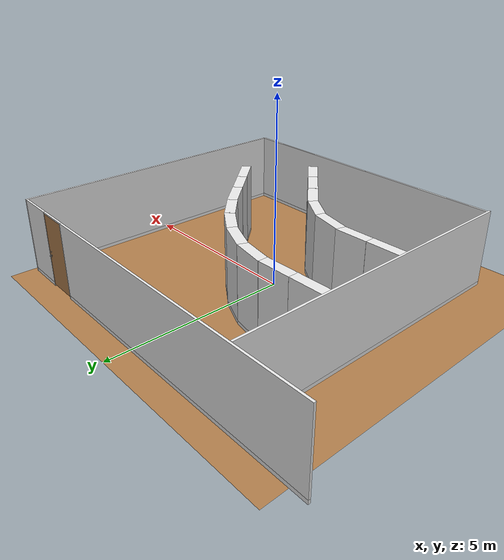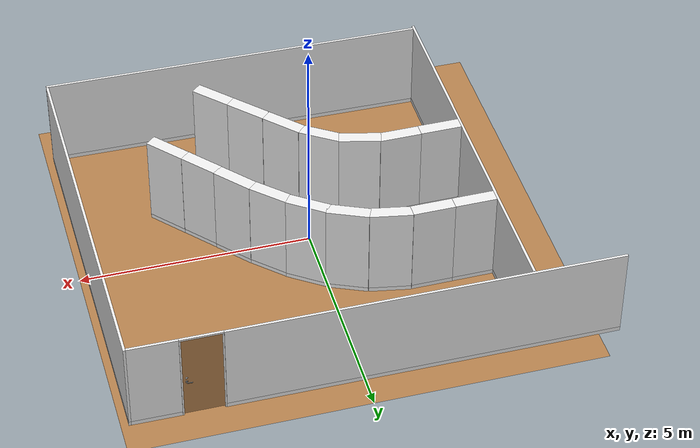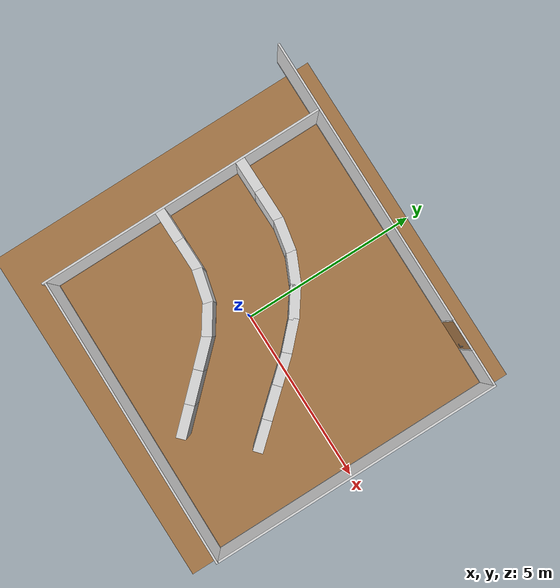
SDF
<sdf version="1.6">
 <world name="default">
  <light name="sun" type="directional">
   <pose>0 0 10 0 -0 0</pose>
   <diffuse>0.8 0.8 0.8 1</diffuse>
   <specular>0.2 0.2 0.2 1</specular>
   <attenuation>
    <range>1000</range>
    <constant>0.9</constant>
    <linear>0.01</linear>
    <quadratic>0.001</quadratic>
   </attenuation>
   <direction>-0.5 0.1 -0.9</direction>
  </light>
  <physics name="default_physics" default="0" type="ode">
   <max_step_size>0.001</max_step_size>
   <real_time_factor>1</real_time_factor>
   <real_time_update_rate>1000</real_time_update_rate>
  </physics>
  <scene><ambient>0.4 0.4 0.4 1</ambient><background>0.7 0.7 0.7 1</background><shadows>0</shadows></scene>
  <model name="wrc_ground_plane">
   <static>1</static>
   <link name="link">
    <collision name="collision">
     <geometry><plane><normal>0 0 1</normal><size>10 10</size></plane></geometry>
     <surface>
      <contact><collide_bitmask>65535</collide_bitmask></contact>
      <friction><ode><mu>100</mu><mu2>50</mu2></ode></friction>
     </surface>
    </collision>
    <visual name="visual">
     <cast_shadows>0</cast_shadows>
     <geometry><plane><normal>0 0 1</normal><size>10 10</size></plane></geometry>
     <material>
      <script><uri>model://wrc_ground_plane/materials/wood.material</uri><name>WRS/WoodFloor</name></script>
     </material>
    </visual>
   </link>
  </model>
  <magnetic_field>6e-06 2.3e-05 -4.2e-05</magnetic_field>
  <atmosphere type="adiabatic"/>
  <spherical_coordinates>
   <surface_model>EARTH_WGS84</surface_model>
   <latitude_deg>0</latitude_deg>
   <longitude_deg>0</longitude_deg>
   <elevation>0</elevation>
   <heading_deg>0</heading_deg>
  </spherical_coordinates>
  <model name="full_wall_55_8295_2090">
   <link name="link">
    <inertial>
     <mass>50</mass>
     <inertia><ixx>1</ixx><ixy>0</ixy><ixz>0</ixz><iyy>1</iyy><iyz>0</iyz><izz>1</izz></inertia>
    </inertial>
    <visual name="bottom_frame">
     <pose>0 0 0.05 0 -0 0</pose>
     <geometry><box><size>0.055 8.295 0.1</size></box></geometry>
     <material>
      <script><uri>model://base_materials/color/scripts</uri><name>hsr_color/white</name></script>
     </material>
    </visual>
    <collision name="collision_bottom_frame">
     <pose>0 0 0.05 0 -0 0</pose>
     <geometry><box><size>0.055 8.295 0.1</size></box></geometry>
    </collision>
    <visual name="wall">
     <pose>0 0 1.095 0 -0 0</pose>
     <geometry><box><size>0.055 8.295 1.99</size></box></geometry>
     <material>
      <script>
       <uri>model://base_materials/wall/scripts</uri>
       <uri>model://base_materials/wall/textures</uri>
       <name>wall/white_noise</name>
      </script>
     </material>
    </visual>
    <collision name="collision_wall">
     <pose>0 0 1.095 0 -0 0</pose>
     <geometry><box><size>0.055 8.295 1.99</size></box></geometry>
    </collision>
    <velocity_decay><linear>0</linear><angular>0</angular></velocity_decay>
   </link>
   <static>1</static>
   <pose>4.81252 0.172211 0 0 -0 0</pose>
  </model>
  <model name="full_wall_55_8295_2090_clone">
   <link name="link">
    <inertial>
     <mass>50</mass>
     <inertia><ixx>1</ixx><ixy>0</ixy><ixz>0</ixz><iyy>1</iyy><iyz>0</iyz><izz>1</izz></inertia>
    </inertial>
    <visual name="bottom_frame">
     <pose>0 0 0.05 0 -0 0</pose>
     <geometry><box><size>0.055 8.295 0.1</size></box></geometry>
     <material>
      <script><uri>model://base_materials/color/scripts</uri><name>hsr_color/white</name></script>
     </material>
    </visual>
    <collision name="collision_bottom_frame">
     <pose>0 0 0.05 0 -0 0</pose>
     <geometry><box><size>0.055 8.295 0.1</size></box></geometry>
    </collision>
    <visual name="wall">
     <pose>0 0 1.095 0 -0 0</pose>
     <geometry><box><size>0.055 8.295 1.99</size></box></geometry>
     <material>
      <script>
       <uri>model://base_materials/wall/scripts</uri>
       <uri>model://base_materials/wall/textures</uri>
       <name>wall/white_noise</name>
      </script>
     </material>
    </visual>
    <collision name="collision_wall">
     <pose>0 0 1.095 0 -0 0</pose>
     <geometry><box><size>0.055 8.295 1.99</size></box></geometry>
    </collision>
    <velocity_decay><linear>0</linear><angular>0</angular></velocity_decay>
   </link>
   <static>1</static>
   <pose>-1.30065 4.31927 0 0 0 -1.57365</pose>
  </model>
  <model name="full_wall_55_900_2090">
   <link name="link">
    <inertial>
     <mass>50</mass>
     <inertia><ixx>1</ixx><ixy>0</ixy><ixz>0</ixz><iyy>1</iyy><iyz>0</iyz><izz>1</izz></inertia>
    </inertial>
    <visual name="bottom_frame">
     <pose>0 0 0.05 0 -0 0</pose>
     <geometry><box><size>0.055 1.04 0.1</size></box></geometry>
     <material>
      <script><uri>model://base_materials/color/scripts</uri><name>hsr_color/white</name></script>
     </material>
    </visual>
    <collision name="collision_bottom_frame">
     <pose>0 0 0.05 0 -0 0</pose>
     <geometry><box><size>0.055 1.04 0.1</size></box></geometry>
    </collision>
    <visual name="wall">
     <pose>0 0 1.095 0 -0 0</pose>
     <geometry><box><size>0.055 1.04 1.99</size></box></geometry>
     <material>
      <script>
       <uri>model://base_materials/wall/scripts</uri>
       <uri>model://base_materials/wall/textures</uri>
       <name>wall/white_noise</name>
      </script>
     </material>
    </visual>
    <collision name="collision_wall">
     <pose>0 0 1.095 0 -0 0</pose>
     <geometry><box><size>0.055 1.04 1.99</size></box></geometry>
    </collision>
    <velocity_decay><linear>0</linear><angular>0</angular></velocity_decay>
   </link>
   <static>1</static>
   <pose>4.26859 4.29665 0 0 -0 1.56253</pose>
  </model>
  <model name="full_wall_55_8295_2090_0">
   <link name="link">
    <inertial>
     <mass>50</mass>
     <inertia><ixx>1</ixx><ixy>0</ixy><ixz>0</ixz><iyy>1</iyy><iyz>0</iyz><izz>1</izz></inertia>
    </inertial>
    <visual name="bottom_frame">
     <pose>0 0 0.05 0 -0 0</pose>
     <geometry><box><size>0.055 8.295 0.1</size></box></geometry>
     <material>
      <script><uri>model://base_materials/color/scripts</uri><name>hsr_color/white</name></script>
     </material>
    </visual>
    <collision name="collision_bottom_frame">
     <pose>0 0 0.05 0 -0 0</pose>
     <geometry><box><size>0.055 8.295 0.1</size></box></geometry>
    </collision>
    <visual name="wall">
     <pose>0 0 1.095 0 -0 0</pose>
     <geometry><box><size>0.055 8.295 1.99</size></box></geometry>
     <material>
      <script>
       <uri>model://base_materials/wall/scripts</uri>
       <uri>model://base_materials/wall/textures</uri>
       <name>wall/white_noise</name>
      </script>
     </material>
    </visual>
    <collision name="collision_wall">
     <pose>0 0 1.095 0 -0 0</pose>
     <geometry><box><size>0.055 8.295 1.99</size></box></geometry>
    </collision>
    <velocity_decay><linear>0</linear><angular>0</angular></velocity_decay>
   </link>
   <static>1</static>
   <pose>0.687285 -3.96616 0 0 0 -1.58277</pose>
  </model>
  <model name="full_wall_55_8295_2090_1">
   <link name="link">
    <inertial>
     <mass>50</mass>
     <inertia><ixx>1</ixx><ixy>0</ixy><ixz>0</ixz><iyy>1</iyy><iyz>0</iyz><izz>1</izz></inertia>
    </inertial>
    <visual name="bottom_frame">
     <pose>0 0 0.05 0 -0 0</pose>
     <geometry><box><size>0.055 8.295 0.1</size></box></geometry>
     <material>
      <script><uri>model://base_materials/color/scripts</uri><name>hsr_color/white</name></script>
     </material>
    </visual>
    <collision name="collision_bottom_frame">
     <pose>0 0 0.05 0 -0 0</pose>
     <geometry><box><size>0.055 8.295 0.1</size></box></geometry>
    </collision>
    <visual name="wall">
     <pose>0 0 1.095 0 -0 0</pose>
     <geometry><box><size>0.055 8.295 1.99</size></box></geometry>
     <material>
      <script>
       <uri>model://base_materials/wall/scripts</uri>
       <uri>model://base_materials/wall/textures</uri>
       <name>wall/white_noise</name>
      </script>
     </material>
    </visual>
    <collision name="collision_wall">
     <pose>0 0 1.095 0 -0 0</pose>
     <geometry><box><size>0.055 8.295 1.99</size></box></geometry>
    </collision>
    <velocity_decay><linear>0</linear><angular>0</angular></velocity_decay>
   </link>
   <static>1</static>
   <pose>-3.4877 0.144746 0 0 -0 0</pose>
  </model>
  <model name="door_55_900_2090">
   <link name="link">
    <pose>0 0.45 0 0 -0 0</pose>
    <inertial>
     <mass>50</mass>
     <inertia><ixx>1</ixx><ixy>0</ixy><ixz>0</ixz><iyy>1</iyy><iyz>0</iyz><izz>1</izz></inertia>
    </inertial>
    <visual name="door">
     <pose>0 0 1.05 0 -0 0</pose>
     <geometry><box><size>0.055 0.83 2</size></box></geometry>
     <material>
      <script><uri>model://base_materials/wood/scripts/wood.material</uri><name>base_materials/wood</name></script>
     </material>
    </visual>
    <collision name="collision_door">
     <pose>0 0 1.05 0 -0 0</pose>
     <geometry><box><size>0.055 0.83 2</size></box></geometry>
    </collision>
    <visual name="right_frame">
     <pose>0 0.4325 1.025 0 -0 0</pose>
     <geometry><box><size>0.055 0.035 2.05</size></box></geometry>
     <material>
      <script><uri>model://base_materials/color/scripts</uri><name>hsr_color/white</name></script>
     </material>
    </visual>
    <collision name="collision_right_frame">
     <pose>0 0.4325 1.025 0 -0 0</pose>
     <geometry><box><size>0.055 0.035 2.05</size></box></geometry>
    </collision>
    <visual name="left_frame">
     <pose>0 -0.4325 1.025 0 -0 0</pose>
     <geometry><box><size>0.055 0.035 2.05</size></box></geometry>
     <material>
      <script><uri>model://base_materials/color/scripts</uri><name>hsr_color/white</name></script>
     </material>
    </visual>
    <collision name="collision_left_frame">
     <pose>0 -0.4325 1.025 0 -0 0</pose>
     <geometry><box><size>0.055 0.035 2.05</size></box></geometry>
    </collision>
    <visual name="top_frame">
     <pose>0 0 2.07 0 -0 0</pose>
     <geometry><box><size>0.055 0.9 0.04</size></box></geometry>
     <material>
      <script><uri>model://base_materials/color/scripts</uri><name>hsr_color/white</name></script>
     </material>
    </visual>
    <collision name="collision_top_frame">
     <pose>0 0 2.07 0 -0 0</pose>
     <geometry><box><size>0.055 0.9 0.04</size></box></geometry>
    </collision>
    <visual name="handle_front">
     <pose>0.0775 0.285 0.93 1.5708 -0 0</pose>
     <geometry><cylinder><radius>0.01</radius><length>0.1</length></cylinder></geometry>
     <material>
      <script><uri>model://base_materials/color/scripts</uri><name>hsr_color/grey</name></script>
     </material>
    </visual>
    <collision name="collision_handle_front">
     <pose>0.0775 0.285 0.93 1.5708 -0 0</pose>
     <geometry><cylinder><radius>0.01</radius><length>0.1</length></cylinder></geometry>
    </collision>
    <visual name="handle_back">
     <pose>-0.0775 0.285 0.93 1.5708 -0 0</pose>
     <geometry><cylinder><radius>0.01</radius><length>0.1</length></cylinder></geometry>
     <material>
      <script><uri>model://base_materials/color/scripts</uri><name>hsr_color/grey</name></script>
     </material>
    </visual>
    <collision name="collision_handle_back">
     <pose>-0.0775 0.285 0.93 1.5708 -0 0</pose>
     <geometry><cylinder><radius>0.01</radius><length>0.1</length></cylinder></geometry>
    </collision>
    <visual name="handle_center1">
     <pose>0 0.335 0.93 3.14159 1.57079 3.14159</pose>
     <geometry><cylinder><radius>0.01</radius><length>0.155</length></cylinder></geometry>
     <material>
      <script><uri>model://base_materials/color/scripts</uri><name>hsr_color/grey</name></script>
     </material>
    </visual>
    <collision name="collision_center1">
     <pose>0 0.335 0.93 3.14159 1.57079 3.14159</pose>
     <geometry><cylinder><radius>0.01</radius><length>0.155</length></cylinder></geometry>
    </collision>
    <visual name="handle_center2">
     <pose>0 0.335 0.93 3.14159 1.57079 3.14159</pose>
     <geometry><cylinder><radius>0.025</radius><length>0.075</length></cylinder></geometry>
     <material>
      <script><uri>model://base_materials/color/scripts</uri><name>hsr_color/grey</name></script>
     </material>
    </visual>
    <collision name="collision_center1">
     <pose>0 0.335 0.93 3.14159 1.57079 3.14159</pose>
     <geometry><cylinder><radius>0.025</radius><length>0.075</length></cylinder></geometry>
    </collision>
    <visual name="handle_front_right_corner">
     <pose>0.0775 0.335 0.93 0 -0 0</pose>
     <geometry><sphere><radius>0.01</radius></sphere></geometry>
     <material>
      <script><uri>model://base_materials/color/scripts</uri><name>hsr_color/grey</name></script>
     </material>
    </visual>
    <collision name="collision_handle_front_right_corner">
     <pose>0.0775 0.335 0.93 0 -0 0</pose>
     <geometry><sphere><radius>0.01</radius></sphere></geometry>
    </collision>
    <visual name="handle_front_left_corner">
     <pose>0.0775 0.235 0.93 0 -0 0</pose>
     <geometry><sphere><radius>0.01</radius></sphere></geometry>
     <material>
      <script><uri>model://base_materials/color/scripts</uri><name>hsr_color/grey</name></script>
     </material>
    </visual>
    <collision name="collision_handle_front_left_corner">
     <pose>0.0775 0.235 0.93 0 -0 0</pose>
     <geometry><sphere><radius>0.01</radius></sphere></geometry>
    </collision>
    <visual name="handle_back_right_corner">
     <pose>-0.0775 0.335 0.93 0 -0 0</pose>
     <geometry><sphere><radius>0.01</radius></sphere></geometry>
     <material>
      <script><uri>model://base_materials/color/scripts</uri><name>hsr_color/grey</name></script>
     </material>
    </visual>
    <collision name="collision_handle_back_right_corner">
     <pose>-0.0775 0.335 0.93 0 -0 0</pose>
     <geometry><sphere><radius>0.01</radius></sphere></geometry>
    </collision>
    <visual name="handle_back_left_corner">
     <pose>-0.0775 0.235 0.93 0 -0 0</pose>
     <geometry><sphere><radius>0.01</radius></sphere></geometry>
     <material>
      <script><uri>model://base_materials/color/scripts</uri><name>hsr_color/white</name></script>
     </material>
    </visual>
    <collision name="collision_handle_back_left_corner">
     <pose>-0.0775 0.235 0.93 0 -0 0</pose>
     <geometry><sphere><radius>0.01</radius></sphere></geometry>
    </collision>
    <visual name="handle_lock1">
     <pose>0 0.335 1.03 0 -0 0</pose>
     <geometry><box><size>0.075 0.005 0.04</size></box></geometry>
     <material>
      <script><uri>model://base_materials/color/scripts</uri><name>hsr_color/white</name></script>
     </material>
    </visual>
    <collision name="collision_handle_lock1">
     <pose>0 0.335 1.03 0 -0 0</pose>
     <geometry><box><size>0.075 0.005 0.04</size></box></geometry>
    </collision>
    <visual name="handle_lock2">
     <pose>0 0.335 1.03 3.14159 1.57079 3.14159</pose>
     <geometry><cylinder><radius>0.025</radius><length>0.065</length></cylinder></geometry>
     <material>
      <script><uri>model://base_materials/color/scripts</uri><name>hsr_color/white</name></script>
     </material>
    </visual>
    <collision name="collision_handle_lock1">
     <pose>0 0.335 1.03 3.14159 1.57079 3.14159</pose>
     <geometry><cylinder><radius>0.025</radius><length>0.065</length></cylinder></geometry>
    </collision>
    <velocity_decay><linear>0</linear><angular>0</angular></velocity_decay>
   </link>
   <static>1</static>
   <pose>2.84759 4.30281 0 0 0 -1.57383</pose>
  </model>
  <model name="full_wall_270_900_2090">
   <link name="link">
    <inertial>
     <mass>50</mass>
     <inertia><ixx>1</ixx><ixy>0</ixy><ixz>0</ixz><iyy>1</iyy><iyz>0</iyz><izz>1</izz></inertia>
    </inertial>
    <visual name="bottom_frame">
     <pose>0 0 0.05 0 -0 0</pose>
     <geometry><box><size>0.27 0.9 0.1</size></box></geometry>
     <material>
      <script><uri>model://base_materials/color/scripts</uri><name>hsr_color/white</name></script>
     </material>
    </visual>
    <collision name="collision_bottom_frame">
     <pose>0 0 0.05 0 -0 0</pose>
     <geometry><box><size>0.27 0.9 0.1</size></box></geometry>
    </collision>
    <visual name="wall">
     <pose>0 0 1.095 0 -0 0</pose>
     <geometry><box><size>0.27 0.9 1.99</size></box></geometry>
     <material>
      <script>
       <uri>model://base_materials/wall/scripts</uri>
       <uri>model://base_materials/wall/textures</uri>
       <name>wall/white_noise</name>
      </script>
     </material>
    </visual>
    <collision name="collision_wall">
     <pose>0 0 1.095 0 -0 0</pose>
     <geometry><box><size>0.27 0.9 1.99</size></box></geometry>
    </collision>
    <velocity_decay><linear>0</linear><angular>0</angular></velocity_decay>
   </link>
   <static>1</static>
   <pose>-2.11542 1.92327 0 0 0 -1.5644</pose>
  </model>
  <model name="full_wall_270_900_2090_clone">
   <link name="link">
    <inertial>
     <mass>50</mass>
     <inertia><ixx>1</ixx><ixy>0</ixy><ixz>0</ixz><iyy>1</iyy><iyz>0</iyz><izz>1</izz></inertia>
    </inertial>
    <visual name="bottom_frame">
     <pose>0 0 0.05 0 -0 0</pose>
     <geometry><box><size>0.27 0.9 0.1</size></box></geometry>
     <material>
      <script><uri>model://base_materials/color/scripts</uri><name>hsr_color/white</name></script>
     </material>
    </visual>
    <collision name="collision_bottom_frame">
     <pose>0 0 0.05 0 -0 0</pose>
     <geometry><box><size>0.27 0.9 0.1</size></box></geometry>
    </collision>
    <visual name="wall">
     <pose>0 0 1.095 0 -0 0</pose>
     <geometry><box><size>0.27 0.9 1.99</size></box></geometry>
     <material>
      <script>
       <uri>model://base_materials/wall/scripts</uri>
       <uri>model://base_materials/wall/textures</uri>
       <name>wall/white_noise</name>
      </script>
     </material>
    </visual>
    <collision name="collision_wall">
     <pose>0 0 1.095 0 -0 0</pose>
     <geometry><box><size>0.27 0.9 1.99</size></box></geometry>
    </collision>
    <velocity_decay><linear>0</linear><angular>0</angular></velocity_decay>
   </link>
   <static>1</static>
   <pose>-2.11673 -0.478875 0 0 0 -1.5644</pose>
  </model>
  <model name="full_wall_270_900_2090_clone_0">
   <link name="link">
    <inertial>
     <mass>50</mass>
     <inertia><ixx>1</ixx><ixy>0</ixy><ixz>0</ixz><iyy>1</iyy><iyz>0</iyz><izz>1</izz></inertia>
    </inertial>
    <visual name="bottom_frame">
     <pose>0 0 0.05 0 -0 0</pose>
     <geometry><box><size>0.27 0.9 0.1</size></box></geometry>
     <material>
      <script><uri>model://base_materials/color/scripts</uri><name>hsr_color/white</name></script>
     </material>
    </visual>
    <collision name="collision_bottom_frame">
     <pose>0 0 0.05 0 -0 0</pose>
     <geometry><box><size>0.27 0.9 0.1</size></box></geometry>
    </collision>
    <visual name="wall">
     <pose>0 0 1.095 0 -0 0</pose>
     <geometry><box><size>0.27 0.9 1.99</size></box></geometry>
     <material>
      <script>
       <uri>model://base_materials/wall/scripts</uri>
       <uri>model://base_materials/wall/textures</uri>
       <name>wall/white_noise</name>
      </script>
     </material>
    </visual>
    <collision name="collision_wall">
     <pose>0 0 1.095 0 -0 0</pose>
     <geometry><box><size>0.27 0.9 1.99</size></box></geometry>
    </collision>
    <velocity_decay><linear>0</linear><angular>0</angular></velocity_decay>
   </link>
   <static>1</static>
   <pose>-1.24431 1.84983 0 0 0 -1.75924</pose>
  </model>
  <model name="full_wall_270_900_2090_clone_0_clone_0">
   <link name="link">
    <inertial>
     <mass>50</mass>
     <inertia><ixx>1</ixx><ixy>0</ixy><ixz>0</ixz><iyy>1</iyy><iyz>0</iyz><izz>1</izz></inertia>
    </inertial>
    <visual name="bottom_frame">
     <pose>0 0 0.05 0 -0 0</pose>
     <geometry><box><size>0.27 0.9 0.1</size></box></geometry>
     <material>
      <script><uri>model://base_materials/color/scripts</uri><name>hsr_color/white</name></script>
     </material>
    </visual>
    <collision name="collision_bottom_frame">
     <pose>0 0 0.05 0 -0 0</pose>
     <geometry><box><size>0.27 0.9 0.1</size></box></geometry>
    </collision>
    <visual name="wall">
     <pose>0 0 1.095 0 -0 0</pose>
     <geometry><box><size>0.27 0.9 1.99</size></box></geometry>
     <material>
      <script>
       <uri>model://base_materials/wall/scripts</uri>
       <uri>model://base_materials/wall/textures</uri>
       <name>wall/white_noise</name>
      </script>
     </material>
    </visual>
    <collision name="collision_wall">
     <pose>0 0 1.095 0 -0 0</pose>
     <geometry><box><size>0.27 0.9 1.99</size></box></geometry>
    </collision>
    <velocity_decay><linear>0</linear><angular>0</angular></velocity_decay>
   </link>
   <static>1</static>
   <pose>-0.4152 1.59002 0 0 0 -1.99208</pose>
  </model>
  <model name="full_wall_270_900_2090_clone_0_clone_2">
   <link name="link">
    <inertial>
     <mass>50</mass>
     <inertia><ixx>1</ixx><ixy>0</ixy><ixz>0</ixz><iyy>1</iyy><iyz>0</iyz><izz>1</izz></inertia>
    </inertial>
    <visual name="bottom_frame">
     <pose>0 0 0.05 0 -0 0</pose>
     <geometry><box><size>0.27 0.9 0.1</size></box></geometry>
     <material>
      <script><uri>model://base_materials/color/scripts</uri><name>hsr_color/white</name></script>
     </material>
    </visual>
    <collision name="collision_bottom_frame">
     <pose>0 0 0.05 0 -0 0</pose>
     <geometry><box><size>0.27 0.9 0.1</size></box></geometry>
    </collision>
    <visual name="wall">
     <pose>0 0 1.095 0 -0 0</pose>
     <geometry><box><size>0.27 0.9 1.99</size></box></geometry>
     <material>
      <script>
       <uri>model://base_materials/wall/scripts</uri>
       <uri>model://base_materials/wall/textures</uri>
       <name>wall/white_noise</name>
      </script>
     </material>
    </visual>
    <collision name="collision_wall">
     <pose>0 0 1.095 0 -0 0</pose>
     <geometry><box><size>0.27 0.9 1.99</size></box></geometry>
    </collision>
    <velocity_decay><linear>0</linear><angular>0</angular></velocity_decay>
   </link>
   <static>1</static>
   <pose>0.325678 1.15657 0 0 0 -2.18811</pose>
  </model>
  <model name="full_wall_270_900_2090_clone_0_clone_4">
   <link name="link">
    <inertial>
     <mass>50</mass>
     <inertia><ixx>1</ixx><ixy>0</ixy><ixz>0</ixz><iyy>1</iyy><iyz>0</iyz><izz>1</izz></inertia>
    </inertial>
    <visual name="bottom_frame">
     <pose>0 0 0.05 0 -0 0</pose>
     <geometry><box><size>0.27 0.9 0.1</size></box></geometry>
     <material>
      <script><uri>model://base_materials/color/scripts</uri><name>hsr_color/white</name></script>
     </material>
    </visual>
    <collision name="collision_bottom_frame">
     <pose>0 0 0.05 0 -0 0</pose>
     <geometry><box><size>0.27 0.9 0.1</size></box></geometry>
    </collision>
    <visual name="wall">
     <pose>0 0 1.095 0 -0 0</pose>
     <geometry><box><size>0.27 0.9 1.99</size></box></geometry>
     <material>
      <script>
       <uri>model://base_materials/wall/scripts</uri>
       <uri>model://base_materials/wall/textures</uri>
       <name>wall/white_noise</name>
      </script>
     </material>
    </visual>
    <collision name="collision_wall">
     <pose>0 0 1.095 0 -0 0</pose>
     <geometry><box><size>0.27 0.9 1.99</size></box></geometry>
    </collision>
    <velocity_decay><linear>0</linear><angular>0</angular></velocity_decay>
   </link>
   <static>1</static>
   <pose>0.976883 0.610586 0 0 0 -2.34003</pose>
  </model>
  <model name="full_wall_270_900_2090_clone_0_clone_5">
   <link name="link">
    <inertial>
     <mass>50</mass>
     <inertia><ixx>1</ixx><ixy>0</ixy><ixz>0</ixz><iyy>1</iyy><iyz>0</iyz><izz>1</izz></inertia>
    </inertial>
    <visual name="bottom_frame">
     <pose>0 0 0.05 0 -0 0</pose>
     <geometry><box><size>0.27 0.9 0.1</size></box></geometry>
     <material>
      <script><uri>model://base_materials/color/scripts</uri><name>hsr_color/white</name></script>
     </material>
    </visual>
    <collision name="collision_bottom_frame">
     <pose>0 0 0.05 0 -0 0</pose>
     <geometry><box><size>0.27 0.9 0.1</size></box></geometry>
    </collision>
    <visual name="wall">
     <pose>0 0 1.095 0 -0 0</pose>
     <geometry><box><size>0.27 0.9 1.99</size></box></geometry>
     <material>
      <script>
       <uri>model://base_materials/wall/scripts</uri>
       <uri>model://base_materials/wall/textures</uri>
       <name>wall/white_noise</name>
      </script>
     </material>
    </visual>
    <collision name="collision_wall">
     <pose>0 0 1.095 0 -0 0</pose>
     <geometry><box><size>0.27 0.9 1.99</size></box></geometry>
    </collision>
    <velocity_decay><linear>0</linear><angular>0</angular></velocity_decay>
   </link>
   <static>1</static>
   <pose>1.58383 -0.022154 0 0 0 -2.42203</pose>
  </model>
  <model name="full_wall_270_900_2090_clone_0_clone">
   <link name="link">
    <inertial>
     <mass>50</mass>
     <inertia><ixx>1</ixx><ixy>0</ixy><ixz>0</ixz><iyy>1</iyy><iyz>0</iyz><izz>1</izz></inertia>
    </inertial>
    <visual name="bottom_frame">
     <pose>0 0 0.05 0 -0 0</pose>
     <geometry><box><size>0.27 0.9 0.1</size></box></geometry>
     <material>
      <script><uri>model://base_materials/color/scripts</uri><name>hsr_color/white</name></script>
     </material>
    </visual>
    <collision name="collision_bottom_frame">
     <pose>0 0 0.05 0 -0 0</pose>
     <geometry><box><size>0.27 0.9 0.1</size></box></geometry>
    </collision>
    <visual name="wall">
     <pose>0 0 1.095 0 -0 0</pose>
     <geometry><box><size>0.27 0.9 1.99</size></box></geometry>
     <material>
      <script>
       <uri>model://base_materials/wall/scripts</uri>
       <uri>model://base_materials/wall/textures</uri>
       <name>wall/white_noise</name>
      </script>
     </material>
    </visual>
    <collision name="collision_wall">
     <pose>0 0 1.095 0 -0 0</pose>
     <geometry><box><size>0.27 0.9 1.99</size></box></geometry>
    </collision>
    <velocity_decay><linear>0</linear><angular>0</angular></velocity_decay>
   </link>
   <static>1</static>
   <pose>-1.27724 -0.593533 0 0 0 -1.81228</pose>
  </model>
  <model name="full_wall_270_900_2090_clone_0_clone_0_clone">
   <link name="link">
    <inertial>
     <mass>50</mass>
     <inertia><ixx>1</ixx><ixy>0</ixy><ixz>0</ixz><iyy>1</iyy><iyz>0</iyz><izz>1</izz></inertia>
    </inertial>
    <visual name="bottom_frame">
     <pose>0 0 0.05 0 -0 0</pose>
     <geometry><box><size>0.27 0.9 0.1</size></box></geometry>
     <material>
      <script><uri>model://base_materials/color/scripts</uri><name>hsr_color/white</name></script>
     </material>
    </visual>
    <collision name="collision_bottom_frame">
     <pose>0 0 0.05 0 -0 0</pose>
     <geometry><box><size>0.27 0.9 0.1</size></box></geometry>
    </collision>
    <visual name="wall">
     <pose>0 0 1.095 0 -0 0</pose>
     <geometry><box><size>0.27 0.9 1.99</size></box></geometry>
     <material>
      <script>
       <uri>model://base_materials/wall/scripts</uri>
       <uri>model://base_materials/wall/textures</uri>
       <name>wall/white_noise</name>
      </script>
     </material>
    </visual>
    <collision name="collision_wall">
     <pose>0 0 1.095 0 -0 0</pose>
     <geometry><box><size>0.27 0.9 1.99</size></box></geometry>
    </collision>
    <velocity_decay><linear>0</linear><angular>0</angular></velocity_decay>
   </link>
   <static>1</static>
   <pose>-0.511205 -0.939187 0 0 0 -2.16314</pose>
  </model>
  <model name="full_wall_270_900_2090_clone_0_clone_2_clone">
   <link name="link">
    <inertial>
     <mass>50</mass>
     <inertia><ixx>1</ixx><ixy>0</ixy><ixz>0</ixz><iyy>1</iyy><iyz>0</iyz><izz>1</izz></inertia>
    </inertial>
    <visual name="bottom_frame">
     <pose>0 0 0.05 0 -0 0</pose>
     <geometry><box><size>0.27 0.9 0.1</size></box></geometry>
     <material>
      <script><uri>model://base_materials/color/scripts</uri><name>hsr_color/white</name></script>
     </material>
    </visual>
    <collision name="collision_bottom_frame">
     <pose>0 0 0.05 0 -0 0</pose>
     <geometry><box><size>0.27 0.9 0.1</size></box></geometry>
    </collision>
    <visual name="wall">
     <pose>0 0 1.095 0 -0 0</pose>
     <geometry><box><size>0.27 0.9 1.99</size></box></geometry>
     <material>
      <script>
       <uri>model://base_materials/wall/scripts</uri>
       <uri>model://base_materials/wall/textures</uri>
       <name>wall/white_noise</name>
      </script>
     </material>
    </visual>
    <collision name="collision_wall">
     <pose>0 0 1.095 0 -0 0</pose>
     <geometry><box><size>0.27 0.9 1.99</size></box></geometry>
    </collision>
    <velocity_decay><linear>0</linear><angular>0</angular></velocity_decay>
   </link>
   <static>1</static>
   <pose>0.154044 -1.49968 0 0 0 -2.38042</pose>
  </model>
  <model name="full_wall_270_900_2090_clone_1">
   <link name="link">
    <inertial>
     <mass>50</mass>
     <inertia><ixx>1</ixx><ixy>0</ixy><ixz>0</ixz><iyy>1</iyy><iyz>0</iyz><izz>1</izz></inertia>
    </inertial>
    <visual name="bottom_frame">
     <pose>0 0 0.05 0 -0 0</pose>
     <geometry><box><size>0.27 0.9 0.1</size></box></geometry>
     <material>
      <script><uri>model://base_materials/color/scripts</uri><name>hsr_color/white</name></script>
     </material>
    </visual>
    <collision name="collision_bottom_frame">
     <pose>0 0 0.05 0 -0 0</pose>
     <geometry><box><size>0.27 0.9 0.1</size></box></geometry>
    </collision>
    <visual name="wall">
     <pose>0 0 1.095 0 -0 0</pose>
     <geometry><box><size>0.27 0.9 1.99</size></box></geometry>
     <material>
      <script>
       <uri>model://base_materials/wall/scripts</uri>
       <uri>model://base_materials/wall/textures</uri>
       <name>wall/white_noise</name>
      </script>
     </material>
    </visual>
    <collision name="collision_wall">
     <pose>0 0 1.095 0 -0 0</pose>
     <geometry><box><size>0.27 0.9 1.99</size></box></geometry>
    </collision>
    <velocity_decay><linear>0</linear><angular>0</angular></velocity_decay>
   </link>
   <static>1</static>
   <pose>-3.00736 1.91593 0 0 0 -1.5644</pose>
  </model>
  <model name="full_wall_270_900_2090_clone_2">
   <link name="link">
    <inertial>
     <mass>50</mass>
     <inertia><ixx>1</ixx><ixy>0</ixy><ixz>0</ixz><iyy>1</iyy><iyz>0</iyz><izz>1</izz></inertia>
    </inertial>
    <visual name="bottom_frame">
     <pose>0 0 0.05 0 -0 0</pose>
     <geometry><box><size>0.27 0.9 0.1</size></box></geometry>
     <material>
      <script><uri>model://base_materials/color/scripts</uri><name>hsr_color/white</name></script>
     </material>
    </visual>
    <collision name="collision_bottom_frame">
     <pose>0 0 0.05 0 -0 0</pose>
     <geometry><box><size>0.27 0.9 0.1</size></box></geometry>
    </collision>
    <visual name="wall">
     <pose>0 0 1.095 0 -0 0</pose>
     <geometry><box><size>0.27 0.9 1.99</size></box></geometry>
     <material>
      <script>
       <uri>model://base_materials/wall/scripts</uri>
       <uri>model://base_materials/wall/textures</uri>
       <name>wall/white_noise</name>
      </script>
     </material>
    </visual>
    <collision name="collision_wall">
     <pose>0 0 1.095 0 -0 0</pose>
     <geometry><box><size>0.27 0.9 1.99</size></box></geometry>
    </collision>
    <velocity_decay><linear>0</linear><angular>0</angular></velocity_decay>
   </link>
   <static>1</static>
   <pose>-3.01058 -0.488914 0 0 0 -1.5644</pose>
  </model>
  <model name="full_wall_270_900_2090_clone_0_clone_2_clone_clone">
   <link name="link">
    <inertial>
     <mass>50</mass>
     <inertia><ixx>1</ixx><ixy>0</ixy><ixz>0</ixz><iyy>1</iyy><iyz>0</iyz><izz>1</izz></inertia>
    </inertial>
    <visual name="bottom_frame">
     <pose>0 0 0.05 0 -0 0</pose>
     <geometry><box><size>0.27 0.9 0.1</size></box></geometry>
     <material>
      <script><uri>model://base_materials/color/scripts</uri><name>hsr_color/white</name></script>
     </material>
    </visual>
    <collision name="collision_bottom_frame">
     <pose>0 0 0.05 0 -0 0</pose>
     <geometry><box><size>0.27 0.9 0.1</size></box></geometry>
    </collision>
    <visual name="wall">
     <pose>0 0 1.095 0 -0 0</pose>
     <geometry><box><size>0.27 0.9 1.99</size></box></geometry>
     <material>
      <script>
       <uri>model://base_materials/wall/scripts</uri>
       <uri>model://base_materials/wall/textures</uri>
       <name>wall/white_noise</name>
      </script>
     </material>
    </visual>
    <collision name="collision_wall">
     <pose>0 0 1.095 0 -0 0</pose>
     <geometry><box><size>0.27 0.9 1.99</size></box></geometry>
    </collision>
    <velocity_decay><linear>0</linear><angular>0</angular></velocity_decay>
   </link>
   <static>1</static>
   <pose>0.777155 -2.15234 0 0 0 -2.38042</pose>
  </model>
  <model name="full_wall_270_900_2090_clone_0_clone_2_clone_clone_0">
   <link name="link">
    <inertial>
     <mass>50</mass>
     <inertia><ixx>1</ixx><ixy>0</ixy><ixz>0</ixz><iyy>1</iyy><iyz>0</iyz><izz>1</izz></inertia>
    </inertial>
    <visual name="bottom_frame">
     <pose>0 0 0.05 0 -0 0</pose>
     <geometry><box><size>0.27 0.9 0.1</size></box></geometry>
     <material>
      <script><uri>model://base_materials/color/scripts</uri><name>hsr_color/white</name></script>
     </material>
    </visual>
    <collision name="collision_bottom_frame">
     <pose>0 0 0.05 0 -0 0</pose>
     <geometry><box><size>0.27 0.9 0.1</size></box></geometry>
    </collision>
    <visual name="wall">
     <pose>0 0 1.095 0 -0 0</pose>
     <geometry><box><size>0.27 0.9 1.99</size></box></geometry>
     <material>
      <script>
       <uri>model://base_materials/wall/scripts</uri>
       <uri>model://base_materials/wall/textures</uri>
       <name>wall/white_noise</name>
      </script>
     </material>
    </visual>
    <collision name="collision_wall">
     <pose>0 0 1.095 0 -0 0</pose>
     <geometry><box><size>0.27 0.9 1.99</size></box></geometry>
    </collision>
    <velocity_decay><linear>0</linear><angular>0</angular></velocity_decay>
   </link>
   <static>1</static>
   <pose>1.38635 -2.79235 0 0 0 -2.38042</pose>
  </model>
  <model name="full_wall_270_900_2090_clone_0_clone_5_clone">
   <link name="link">
    <inertial>
     <mass>50</mass>
     <inertia><ixx>1</ixx><ixy>0</ixy><ixz>0</ixz><iyy>1</iyy><iyz>0</iyz><izz>1</izz></inertia>
    </inertial>
    <visual name="bottom_frame">
     <pose>0 0 0.05 0 -0 0</pose>
     <geometry><box><size>0.27 0.9 0.1</size></box></geometry>
     <material>
      <script><uri>model://base_materials/color/scripts</uri><name>hsr_color/white</name></script>
     </material>
    </visual>
    <collision name="collision_bottom_frame">
     <pose>0 0 0.05 0 -0 0</pose>
     <geometry><box><size>0.27 0.9 0.1</size></box></geometry>
    </collision>
    <visual name="wall">
     <pose>0 0 1.095 0 -0 0</pose>
     <geometry><box><size>0.27 0.9 1.99</size></box></geometry>
     <material>
      <script>
       <uri>model://base_materials/wall/scripts</uri>
       <uri>model://base_materials/wall/textures</uri>
       <name>wall/white_noise</name>
      </script>
     </material>
    </visual>
    <collision name="collision_wall">
     <pose>0 0 1.095 0 -0 0</pose>
     <geometry><box><size>0.27 0.9 1.99</size></box></geometry>
    </collision>
    <velocity_decay><linear>0</linear><angular>0</angular></velocity_decay>
   </link>
   <static>1</static>
   <pose>2.16213 -0.687948 0 0 0 -2.42203</pose>
  </model>
  <model name="full_wall_270_900_2090_clone_0_clone_5_clone_0">
   <link name="link">
    <inertial>
     <mass>50</mass>
     <inertia><ixx>1</ixx><ixy>0</ixy><ixz>0</ixz><iyy>1</iyy><iyz>0</iyz><izz>1</izz></inertia>
    </inertial>
    <visual name="bottom_frame">
     <pose>0 0 0.05 0 -0 0</pose>
     <geometry><box><size>0.27 0.9 0.1</size></box></geometry>
     <material>
      <script><uri>model://base_materials/color/scripts</uri><name>hsr_color/white</name></script>
     </material>
    </visual>
    <collision name="collision_bottom_frame">
     <pose>0 0 0.05 0 -0 0</pose>
     <geometry><box><size>0.27 0.9 0.1</size></box></geometry>
    </collision>
    <visual name="wall">
     <pose>0 0 1.095 0 -0 0</pose>
     <geometry><box><size>0.27 0.9 1.99</size></box></geometry>
     <material>
      <script>
       <uri>model://base_materials/wall/scripts</uri>
       <uri>model://base_materials/wall/textures</uri>
       <name>wall/white_noise</name>
      </script>
     </material>
    </visual>
    <collision name="collision_wall">
     <pose>0 0 1.095 0 -0 0</pose>
     <geometry><box><size>0.27 0.9 1.99</size></box></geometry>
    </collision>
    <velocity_decay><linear>0</linear><angular>0</angular></velocity_decay>
   </link>
   <static>1</static>
   <pose>2.72506 -1.32624 0 0 0 -2.42203</pose>
  </model>
  <gravity>0 0 -9.8</gravity>
 </world>
</sdf>
